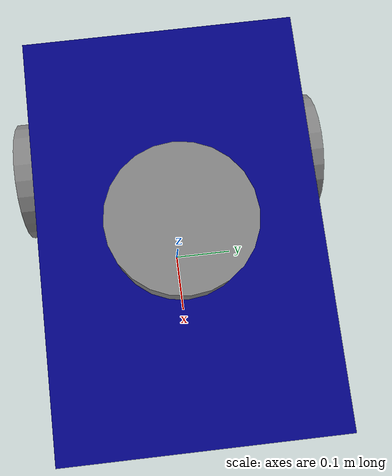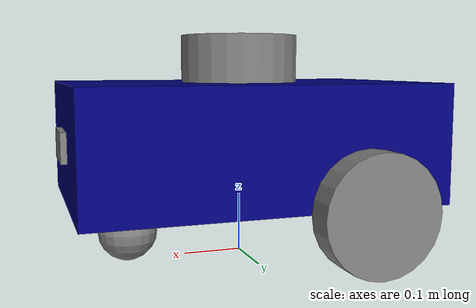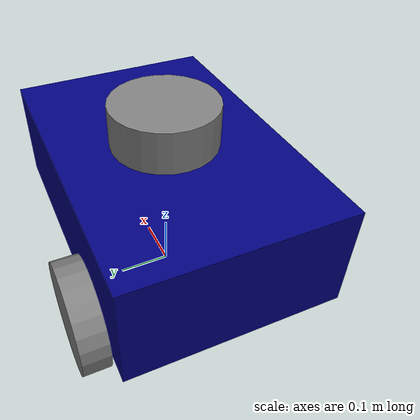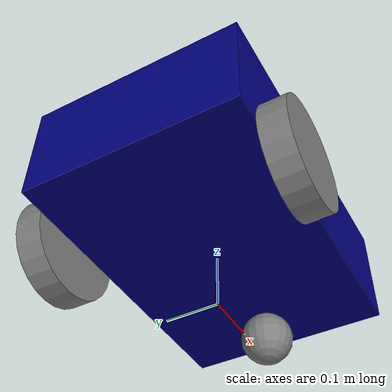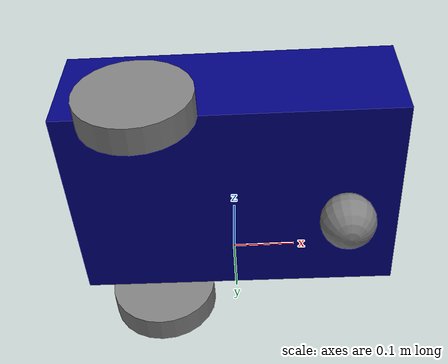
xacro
<?xml version ="1.0"?>
<robot name = "punet_bot" xmlns:xacro="http://www.ros.org/wiki/xacro">

    <xacro:property name="base_length" value="0.6" />
    <xacro:property name="base_width" value="0.4" />
    <xacro:property name="base_height" value="0.2" />

    <xacro:property name="wheel_width" value="0.05" />
    <xacro:property name="wheel_radius" value="0.1" />

    <xacro:include filename="common_properties.xacro" />
    <xacro:include filename="mobile_base.xacro" />
    <xacro:include filename="mobile_base_gazebo.xacro" />

    <xacro:include filename="camera.xacro" />

</robot>

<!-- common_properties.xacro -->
<robot xmlns:xacro="http://www.ros.org/wiki/xacro">

    <material name = "blue">
        <color rgba="0 0 0.5 1 " />
    </material>

    <material name = "grey">
        <color rgba="0.5 0.5 0.5 1 " />
    </material>

    <material name = "green">
        <color rgba="0 0.5 0 1 " />
    </material>

    <xacro:macro name="box_inertia" params="m l w h xyz rpy">
        <inertial>
            <origin xyz="${xyz}" rpy="${rpy}" />
            <mass value="${m}" />
            <inertia ixx="${(m/12) * (h*h + l*l)}" ixy="0" ixz="0"
                     iyy="${(m/12) * (w*w + l*l)}" iyz="0"
                     izz="${(m/12) * (w*w + h*h)}" />
        </inertial>
    </xacro:macro>

    <xacro:macro name="cylinder_inertia" params="m r h xyz rpy">
        <inertial>
            <origin xyz="${xyz}" rpy="${rpy}" />
            <mass value="${m}" />
            <inertia ixx="${(m/12) * (3*r*r + h*h)}" ixy="0" ixz="0"
                     iyy="${(m/12) * (3*r*r + h*h)}" iyz="0"
                     izz="${(m/2) * (r*r)}" />
        </inertial>
    </xacro:macro>

    <xacro:macro name="sphere_inertia" params="m r xyz rpy">
        <inertial>
            <origin xyz="${xyz}" rpy="${rpy}" />
            <mass value="${m}" />
            <inertia ixx="${(2/5) * m * r * r}" ixy="0" ixz="0"
                     iyy="${(2/5) * m * r * r}" iyz="0"
                     izz="${(2/5) * m * r * r}" />
        </inertial>
    </xacro:macro>

</robot>

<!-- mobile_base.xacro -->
<robot xmlns:xacro="http://www.ros.org/wiki/xacro">

    <link name = "base_link">
        <visual>
            <geometry>
                <box size="${base_length} ${base_width} ${base_height}"></box>
             </geometry>
            <origin xyz="0 0 ${base_height/2.0}" rpy= "0 0 0" />
            <material name = "blue" />
        </visual>
        <collision>
            <geometry>
                <box size="${base_length} ${base_width} ${base_height}"></box>
             </geometry>
            <origin xyz="0 0 ${base_height/2.0}" rpy= "0 0 0" />
        </collision>
        <xacro:box_inertia m="5.0" l="${2*base_length}" w="${2*base_width}" h="${2*base_height}"
                     xyz="0 0 ${base_height/2.0}" rpy= "0 0 0" />

    </link>

    <xacro:macro name="wheel_link" params="prefix">
    <link name ="${prefix}_wheel">
        <visual>
            <geometry>
                <cylinder radius="${wheel_radius}" length="${wheel_width}" />
            </geometry>
            <origin xyz =" 0 0 0" rpy="${pi/2.0} 0 0" />
            <material name ="grey" />
        </visual>
        <collision>
            <geometry>
                <cylinder radius="${wheel_radius}" length="${wheel_width}" />
            </geometry>
            <origin xyz =" 0 0 0" rpy="${pi/2.0} 0 0" />
        </collision>
        <xacro:cylinder_inertia m="1.0" r="${2*wheel_radius}" h="${2*wheel_width}"
                                    xyz="0 0 0" rpy="${pi / 2.0} 0 0" />
    </link>
    </xacro:macro>

    <xacro:wheel_link prefix="right" />
    <xacro:wheel_link prefix="left" />

    <link name ="caster_wheel">
        <visual>
            <geometry>
                <sphere radius="${wheel_radius/2.0}"/>
            </geometry>
            <origin xyz =" 0 0 0" rpy="0 0 0" />
            <material name ="grey" />
        </visual>
        <collision>
            <geometry>
                <sphere radius="${wheel_radius/2.0}"/>
            </geometry>
            <origin xyz =" 0 0 0" rpy="0 0 0" />
        </collision>
        <xacro:sphere_inertia m="0.5" r="${2*wheel_radius / 2.0}"
                              xyz="0 0 0" rpy="0 0 0" />
    </link>

    <link name ="base_footprint">
    </link>

    <joint name = "base_right_wheel_joint" type= "continuous">
        <parent link="base_link" />
        <child link ="right_wheel" />
        <origin xyz="${-base_length/4.0} -${(base_width/2.0)+(wheel_width/2.0)} 0" rpy="0 0 0" />
        <axis xyz=" 0 1 0" />
    </joint>

    <joint name = "base_left_wheel_joint" type= "continuous">
        <parent link="base_link" />
        <child link ="left_wheel" />
        <origin xyz="${-base_length/4.0} ${(base_width/2.0)+(wheel_width/2.0)} 0" rpy="0 0 0" />
        <axis xyz=" 0 1 0" />
    </joint>

    <joint name = "base_caster_wheel_joint" type= "fixed">
        <parent link="base_link" />
        <child link ="caster_wheel" />
        <origin xyz="${base_length/3.0} 0 -${wheel_radius/2.0}" rpy="0 0 0" />
    </joint>

    <joint name = "base_joint" type= "fixed">
        <parent link="base_footprint" />
        <child link ="base_link" />
        <origin xyz="0 0 ${wheel_radius}" rpy="0 0 0" />
    </joint>

</robot>

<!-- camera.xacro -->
<robot xmlns:xacro="http://www.ros.org/wiki/xacro">

    <xacro:property name="camera_length" value="0.01" />
    <xacro:property name="camera_width" value="0.1" />
    <xacro:property name="camera_height" value="0.05" />

    <xacro:property name="lidar_radius" value="0.1" />
    <xacro:property name="lidar_width" value="0.08" />

    <link name="camera_link">
        <visual>
            <geometry>
                <box size="${camera_length} ${camera_width} ${camera_height}"/>
            </geometry>
            <material name="grey" />
        </visual>
        <collision>
            <geometry>
                <box size="${camera_length} ${camera_width} ${camera_height}"/>
            </geometry>
        </collision>
        <xacro:box_inertia m="0.1" l="${camera_length}"
                            w="${camera_width}" h="${camera_height}" xyz="0 0 0" rpy="0 0 0" />
    </link>

    <link name="camera_link_optical">
    </link>

    <joint name="base_camera_joint" type="fixed" >
    <parent link="base_link" />
    <child link="camera_link" />
    <origin xyz="${(base_length+camera_length)/2} 0 ${base_height/2}" rpy="0 0 0" />
    </joint>

    <joint name="camera_optical_joint" type="fixed">
        <!-- these values have to be these values otherwise the gazebo camera
            image won't be aligned properly with the frame it is supposedly
            originating from -->
    <origin xyz="0 0 0" rpy="${-pi/2} 0 ${-pi/2}"/>
    <parent link="camera_link"/>
    <child link="camera_link_optical"/>
    </joint>

    <link name="lidar_link">
        <visual>
            <geometry>
                <cylinder radius="${lidar_radius}" length="${lidar_width}"/>
            </geometry>
            <material name="grey" />
        </visual>
        <collision>
            <geometry>
                <cylinder radius="${lidar_radius}" length="${lidar_width}"/>
            </geometry>
        </collision>
        <xacro:cylinder_inertia m="0.1" r="${lidar_radius}" h="${lidar_width}" xyz="0 0 0" rpy="0 0 0" />

    </link>

    <joint name="base_lidar_joint" type="fixed" >
    <parent link="base_link" />
    <child link="lidar_link" />
    <origin xyz="0 0 ${base_height+(lidar_width/2.0)}" rpy="0 0 0" />
    </joint>

<gazebo reference="lidar_link">
    <material>Gazebo/Red</material>
    <sensor name="laser" type="ray">
        <pose>0 0 0 0 0 0 0</pose>
        <visualize>true</visualize>
        <ray>
          <scan>
            <horizontal>
              <samples>320</samples>
              <resolution>1</resolution>
              <min_angle>0</min_angle>
              <max_angle>6.280000</max_angle>
            </horizontal>
          </scan>
          <range>
            <min>0.25</min>
            <max>3.5</max>
            <resolution>0.015</resolution>
          </range>
          <noise>
          <type>gaussian</type>
          <mean>0.0</mean>
          <stddev>0.01</stddev>
          </noise>
        </ray>
 	    <always_on>true</always_on>
        <update_rate>30</update_rate>
        <plugin name="laser" filename="/opt/ros/humble/lib/libgazebo_ros_ray_sensor.so">
      	 <ros>
          <argument>~/out:=scan</argument>
         </ros>
         <frame_name>lidar_link</frame_name>
      <!-- Set output to sensor_msgs/LaserScan to get same output type as gazebo_ros_laser -->
         <output_type>sensor_msgs/LaserScan</output_type>
        </plugin>
    </sensor>
</gazebo>

    <gazebo reference="camera_link">
            <material>Gazebo/Red</material>
            <sensor name="camera_sensor" type="camera" >
                <pose>0 0 0 0 0 0</pose>
                <visualize>false</visualize>
                <update_rate>10.0</update_rate>
                <plugin name="camera_controller" filename="libgazebo_ros_camera.so">
                    <!-- Set TF frame name. If empty, defaults to link name -->
                    <frame_name>camera_link_optical</frame_name>
                </plugin>
            </sensor>

    </gazebo>

</robot>
